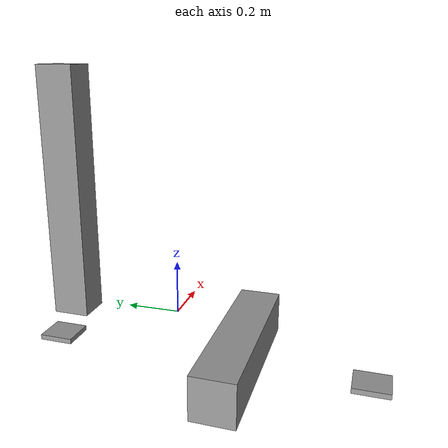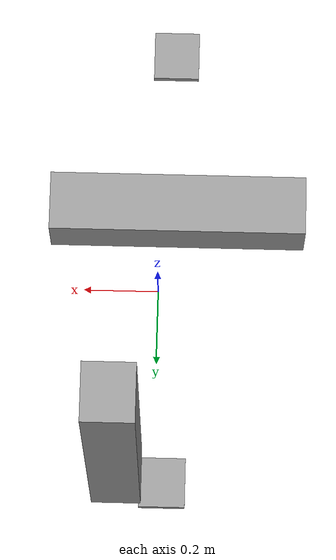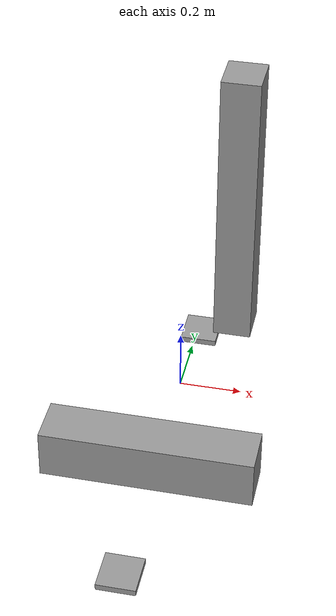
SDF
<?xml version='1.0'?>
<sdf version='1.7'>
  <model name='Skripsie_sim'>
    <link name='link_0'>
      <inertial>
        <mass>0.000332097</mass>
        <inertia>
          <ixx>5.08922e-07</ixx>
          <ixy>0</ixy>
          <ixz>0</ixz>
          <iyy>4.39425e-07</iyy>
          <iyz>0</iyz>
          <izz>9.26381e-07</izz>
        </inertia>
        <pose>0 0 0 0 -0 0</pose>
      </inertial>
      <pose>-0.021113 0.49314 -0.155387 0 -0 0</pose>
      <visual name='visual'>
        <pose>0 0 0 0 -0 0</pose>
        <geometry>
          <box>
            <size>0.124424 0.134136 0.019921</size>
          </box>
        </geometry>
        <material>
          <lighting>1</lighting>
          <script>
            <uri>file://media/materials/scripts/gazebo.material</uri>
            <name>Gazebo/Grey</name>
          </script>
          <shader type='pixel'/>
        </material>
        <transparency>0</transparency>
        <cast_shadows>1</cast_shadows>
      </visual>
      <collision name='collision'>
        <laser_retro>0</laser_retro>
        <max_contacts>10</max_contacts>
        <pose>0 0 0 0 -0 0</pose>
        <geometry>
          <box>
            <size>0.124424 0.134136 0.019921</size>
          </box>
        </geometry>
        <surface>
          <friction>
            <ode>
              <mu>1</mu>
              <mu2>1</mu2>
              <fdir1>0 0 0</fdir1>
              <slip1>0</slip1>
              <slip2>0</slip2>
            </ode>
            <torsional>
              <coefficient>1</coefficient>
              <patch_radius>0</patch_radius>
              <surface_radius>0</surface_radius>
              <use_patch_radius>1</use_patch_radius>
              <ode>
                <slip>0</slip>
              </ode>
            </torsional>
          </friction>
          <bounce>
            <restitution_coefficient>0</restitution_coefficient>
            <threshold>1e+06</threshold>
          </bounce>
          <contact>
            <collide_without_contact>0</collide_without_contact>
            <collide_without_contact_bitmask>1</collide_without_contact_bitmask>
            <collide_bitmask>1</collide_bitmask>
            <ode>
              <soft_cfm>0</soft_cfm>
              <soft_erp>0.2</soft_erp>
              <kp>1e+13</kp>
              <kd>1</kd>
              <max_vel>0.01</max_vel>
              <min_depth>0</min_depth>
            </ode>
            <bullet>
              <split_impulse>1</split_impulse>
              <split_impulse_penetration_threshold>-0.01</split_impulse_penetration_threshold>
              <soft_cfm>0</soft_cfm>
              <soft_erp>0.2</soft_erp>
              <kp>1e+13</kp>
              <kd>1</kd>
            </bullet>
          </contact>
        </surface>
      </collision>
    </link>
    <link name='link_0_clone'>
      <inertial>
        <mass>0.000332097</mass>
        <inertia>
          <ixx>5.08922e-07</ixx>
          <ixy>0</ixy>
          <ixz>0</ixz>
          <iyy>4.39425e-07</iyy>
          <iyz>0</iyz>
          <izz>9.26381e-07</izz>
        </inertia>
        <pose>0 0 0 0 -0 0</pose>
      </inertial>
      <pose>-0.032771 -0.725831 -0.155382 0 -0 0</pose>
      <visual name='visual'>
        <pose>0 0 0 0 -0 0</pose>
        <geometry>
          <box>
            <size>0.124424 0.134136 0.019921</size>
          </box>
        </geometry>
        <material>
          <lighting>1</lighting>
          <script>
            <uri>file://media/materials/scripts/gazebo.material</uri>
            <name>Gazebo/Grey</name>
          </script>
          <shader type='pixel'/>
        </material>
        <transparency>0</transparency>
        <cast_shadows>1</cast_shadows>
      </visual>
      <collision name='collision'>
        <laser_retro>0</laser_retro>
        <max_contacts>10</max_contacts>
        <pose>0 0 0 0 -0 0</pose>
        <geometry>
          <box>
            <size>0.124424 0.134136 0.019921</size>
          </box>
        </geometry>
        <surface>
          <friction>
            <ode>
              <mu>1</mu>
              <mu2>1</mu2>
              <fdir1>0 0 0</fdir1>
              <slip1>0</slip1>
              <slip2>0</slip2>
            </ode>
            <torsional>
              <coefficient>1</coefficient>
              <patch_radius>0</patch_radius>
              <surface_radius>0</surface_radius>
              <use_patch_radius>1</use_patch_radius>
              <ode>
                <slip>0</slip>
              </ode>
            </torsional>
          </friction>
          <bounce>
            <restitution_coefficient>0</restitution_coefficient>
            <threshold>1e+06</threshold>
          </bounce>
          <contact>
            <collide_without_contact>0</collide_without_contact>
            <collide_without_contact_bitmask>1</collide_without_contact_bitmask>
            <collide_bitmask>1</collide_bitmask>
            <ode>
              <soft_cfm>0</soft_cfm>
              <soft_erp>0.2</soft_erp>
              <kp>1e+13</kp>
              <kd>1</kd>
              <max_vel>0.01</max_vel>
              <min_depth>0</min_depth>
            </ode>
            <bullet>
              <split_impulse>1</split_impulse>
              <split_impulse_penetration_threshold>-0.01</split_impulse_penetration_threshold>
              <soft_cfm>0</soft_cfm>
              <soft_erp>0.2</soft_erp>
              <kp>1e+13</kp>
              <kd>1</kd>
            </bullet>
          </contact>
        </surface>
      </collision>
    </link>
    <link name='link_1'>
      <inertial>
        <mass>0.0192468</mass>
        <inertia>
          <ixx>0.00163835</ixx>
          <ixy>0</ixy>
          <ixz>0</ixz>
          <iyy>0.00163156</iyy>
          <iyz>0</iyz>
          <izz>6.2111e-05</izz>
        </inertia>
        <pose>0 0 0 0 -0 0</pose>
      </inertial>
      <pose>0.100109 0.487594 0.403904 0 -0 0</pose>
      <visual name='visual'>
        <pose>0 0 0 0 -0 0</pose>
        <geometry>
          <box>
            <size>0.131329 0.146553 1</size>
          </box>
        </geometry>
        <material>
          <lighting>1</lighting>
          <script>
            <uri>file://media/materials/scripts/gazebo.material</uri>
            <name>Gazebo/Grey</name>
          </script>
          <shader type='pixel'/>
        </material>
        <transparency>0</transparency>
        <cast_shadows>1</cast_shadows>
      </visual>
      <collision name='collision'>
        <laser_retro>0</laser_retro>
        <max_contacts>10</max_contacts>
        <pose>0 0 0 0 -0 0</pose>
        <geometry>
          <box>
            <size>0.131329 0.146553 1</size>
          </box>
        </geometry>
        <surface>
          <friction>
            <ode>
              <mu>1</mu>
              <mu2>1</mu2>
              <fdir1>0 0 0</fdir1>
              <slip1>0</slip1>
              <slip2>0</slip2>
            </ode>
            <torsional>
              <coefficient>1</coefficient>
              <patch_radius>0</patch_radius>
              <surface_radius>0</surface_radius>
              <use_patch_radius>1</use_patch_radius>
              <ode>
                <slip>0</slip>
              </ode>
            </torsional>
          </friction>
          <bounce>
            <restitution_coefficient>0</restitution_coefficient>
            <threshold>1e+06</threshold>
          </bounce>
          <contact>
            <collide_without_contact>0</collide_without_contact>
            <collide_without_contact_bitmask>1</collide_without_contact_bitmask>
            <collide_bitmask>1</collide_bitmask>
            <ode>
              <soft_cfm>0</soft_cfm>
              <soft_erp>0.2</soft_erp>
              <kp>1e+13</kp>
              <kd>1</kd>
              <max_vel>0.01</max_vel>
              <min_depth>0</min_depth>
            </ode>
            <bullet>
              <split_impulse>1</split_impulse>
              <split_impulse_penetration_threshold>-0.01</split_impulse_penetration_threshold>
              <soft_cfm>0</soft_cfm>
              <soft_erp>0.2</soft_erp>
              <kp>1e+13</kp>
              <kd>1</kd>
            </bullet>
          </contact>
        </surface>
      </collision>
    </link>
    <link name='link_2'>
      <inertial>
        <mass>0.0182364</mass>
        <inertia>
          <ixx>7.94838e-05</ixx>
          <ixy>0</ixy>
          <ixz>0</ixz>
          <iyy>0.000780088</iyy>
          <iyz>0</iyz>
          <izz>0.000777912</izz>
        </inertia>
        <pose>0 0 0 0 -0 0</pose>
      </inertial>
      <pose>-0.046225 -0.254903 -0.093147 0 -0 0</pose>
      <visual name='visual'>
        <pose>0 0 0 0 -0 0</pose>
        <geometry>
          <box>
            <size>0.69746 0.159484 0.163912</size>
          </box>
        </geometry>
        <material>
          <lighting>1</lighting>
          <script>
            <uri>file://media/materials/scripts/gazebo.material</uri>
            <name>Gazebo/Grey</name>
          </script>
          <shader type='pixel'/>
        </material>
        <transparency>0</transparency>
        <cast_shadows>1</cast_shadows>
      </visual>
      <collision name='collision'>
        <laser_retro>0</laser_retro>
        <max_contacts>10</max_contacts>
        <pose>0 0 0 0 -0 0</pose>
        <geometry>
          <box>
            <size>0.69746 0.159484 0.163912</size>
          </box>
        </geometry>
        <surface>
          <friction>
            <ode>
              <mu>1</mu>
              <mu2>1</mu2>
              <fdir1>0 0 0</fdir1>
              <slip1>0</slip1>
              <slip2>0</slip2>
            </ode>
            <torsional>
              <coefficient>1</coefficient>
              <patch_radius>0</patch_radius>
              <surface_radius>0</surface_radius>
              <use_patch_radius>1</use_patch_radius>
              <ode>
                <slip>0</slip>
              </ode>
            </torsional>
          </friction>
          <bounce>
            <restitution_coefficient>0</restitution_coefficient>
            <threshold>1e+06</threshold>
          </bounce>
          <contact>
            <collide_without_contact>0</collide_without_contact>
            <collide_without_contact_bitmask>1</collide_without_contact_bitmask>
            <collide_bitmask>1</collide_bitmask>
            <ode>
              <soft_cfm>0</soft_cfm>
              <soft_erp>0.2</soft_erp>
              <kp>1e+13</kp>
              <kd>1</kd>
              <max_vel>0.01</max_vel>
              <min_depth>0</min_depth>
            </ode>
            <bullet>
              <split_impulse>1</split_impulse>
              <split_impulse_penetration_threshold>-0.01</split_impulse_penetration_threshold>
              <soft_cfm>0</soft_cfm>
              <soft_erp>0.2</soft_erp>
              <kp>1e+13</kp>
              <kd>1</kd>
            </bullet>
          </contact>
        </surface>
      </collision>
    </link>
    <static>0</static>
    <allow_auto_disable>1</allow_auto_disable>
  </model>
</sdf>
